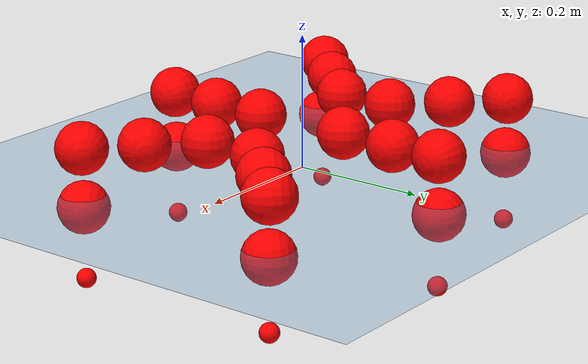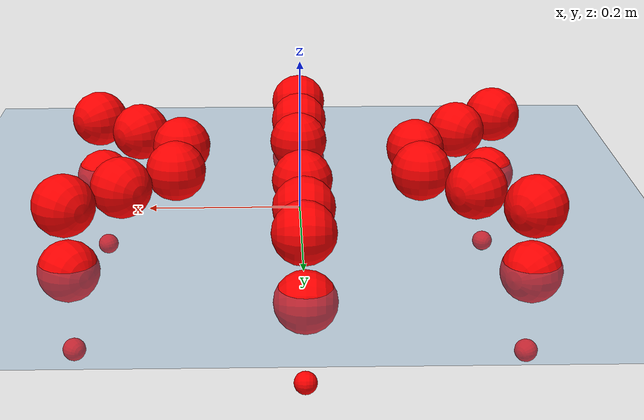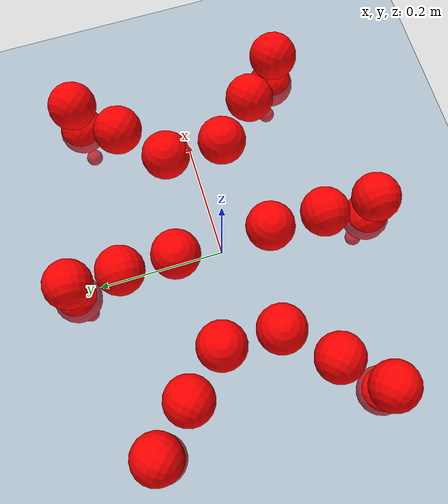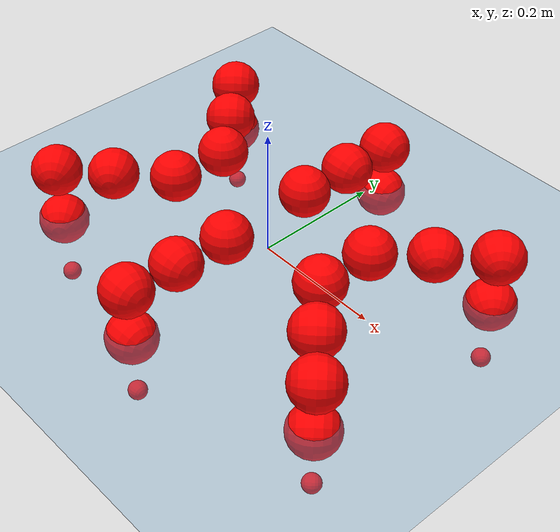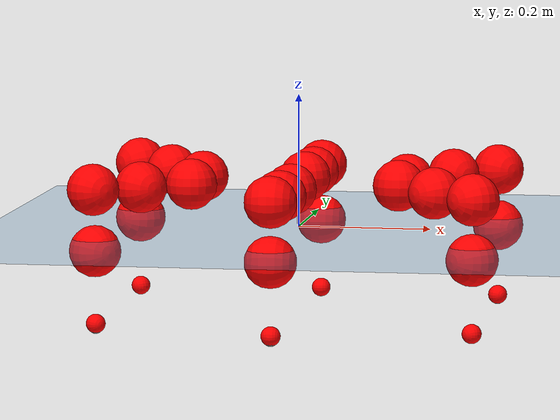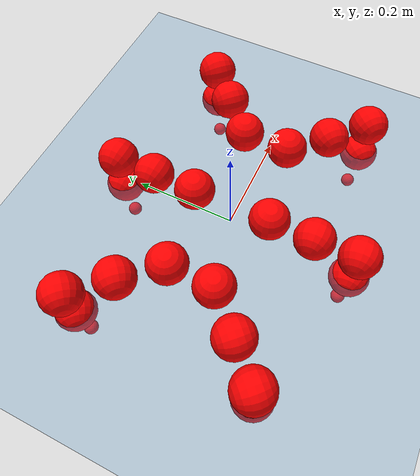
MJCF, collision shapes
<mujoco model="Golem">
  <compiler angle="radian" assetdir="assets" balanceinertia="true" inertiafromgeom="false"/>

  <option timestep="0.005" density="1.2" viscosity="2e-05"/>

  <size nkey="1"/>

  <visual>
    <quality shadowsize="8192"/>
    <map shadowclip="0.5"/>
  </visual>

  <default>
    <default class="/">
      <joint armature="0.01" damping="0.01" frictionloss="0.01"/>
      <geom contype="0" conaffinity="0" group="1" solref="-1000 -80"/>
      <site size="0.01 0.005 0.005" group="5"/>
      <general forcelimited="true" biastype="affine" gainprm="25" biasprm="0 -25 -0.5"/>
      <default class="visual">
        <geom type="mesh" group="2"/>
      </default>
      <default class="collision">
        <geom group="3"/>
      </default>
      <default class="foot">
        <geom size="0.01 0 0" condim="6" group="4" priority="1" solimp="0.015 1 0.01"/>
      </default>
      <default class="reward_collision_sphere">
        <geom group="5" rgba="1 0 0 1"/>
      </default>
    </default>
  </default>

  <asset>
    <texture type="skybox" colorspace="auto" name="//unnamed_texture_0" builtin="gradient" rgb1="0.95 0.95 0.95" rgb2="0.95 0.95 0.95" width="100" height="600"/>
    <texture type="2d" colorspace="auto" name="texplane" builtin="checker" rgb1="0.345 0.575 0.748" rgb2="0.345 0.575 0.748" markrgb="1 1 1" width="512" height="512"/>
    <material name="MatPlane" class="/" texture="texplane" texuniform="true" texrepeat="2 2" specular="0.9"/>
    <mesh name="body" class="/" file="body.stl" scale="0.001 0.001 0.001"/>
    <mesh name="coxa" class="/" file="coxa.stl" scale="0.001 0.001 0.001"/>
    <mesh name="femur" class="/" file="femur.stl" scale="0.001 0.001 0.001"/>
    <mesh name="tibia" class="/" file="tibia.stl" scale="0.001 0.001 0.001"/>
    <mesh name="tarsus" class="/" file="tarsus.stl" scale="0.001 0.001 0.001"/>
  </asset>

  <worldbody>
    <geom name="floor" class="/" size="100 100 0.125" type="plane" group="0" material="MatPlane"/>
    <light name="toplight_shadow" class="/" pos="0 0 5" dir="0.0990148 0.0990148 -0.990148" type="directional" ambient="0.04 0.04 0.04" diffuse="0.55 0.55 0.55" specular="0.12 0.12 0.12"/>
    <light name="toplight_fill" class="/" pos="0 0 5" dir="0.0990148 0.0990148 -0.990148" type="directional" castshadow="false" ambient="0.04 0.04 0.04" diffuse="0.3 0.3 0.3" specular="0.08 0.08 0.08"/>
    <body name="trunk" pos="0.000414514 -0.000178043 -0.00071796" quat="1 0.000187904 0.000202047 0.000244034">
      <inertial pos="0.00301169 0.000544047 -0.00374467" quat="0.999909 -0.0109765 -0.00459979 0.00634562" mass="3.32847" diaginertia="0.0106497 0.00308665 0.015988"/>
      <joint name="//unnamed_joint_0" type="free"/>
      <geom name="//unnamed_geom_1" class="/" pos="0 0 0.0696585" quat="1 0 0 0" type="mesh" rgba="0.9 0.9 0.9 1" mesh="body"/>
      <site name="imu" class="/" pos="0.125556 -0.0025595 0.100235" size="0.00961518"/>
      <camera name="track" class="/" pos="0 -1.58017 0" quat="0.707107 0.707107 0 0" mode="trackcom"/>
      <camera name="ego_camera" class="/" pos="0.130787 0 0.108841" quat="-0.5 -0.5 0.5 0.5"/>
      <body name="coxa_RR" pos="-0.177628 -0.0653441 0.0677116" quat="0.382569 0.000130004 8.50956e-05 -0.923927">
        <inertial pos="-0.000449187 -0.00261879 0.000434619" quat="0.999998 -0.000648589 0.00193876 -0.000288934" mass="0.173637" diaginertia="0.00994645 0.00287531 0.0151557"/>
        <joint name="coxa_joint_RR" class="/" pos="0 0 0" axis="0.000707542 0.000538798 -1" range="-3.19568 3.1419" armature="0.0096621" damping="0" frictionloss="0.00949869"/>
        <geom name="//unnamed_geom_2" class="/" type="mesh" rgba="0.2 0.2 0.2 1" mesh="coxa"/>
        <geom name="//unnamed_geom_3" class="reward_collision_sphere" size="0.0384607" pos="-0.0301817 0 0"/>
        <body name="femur_RR" pos="0.0622197 0.00198664 0.00244353" quat="0.50085 -0.499754 0.499124 0.500271">
          <inertial pos="0.000712197 0.000242245 -0.00275576" quat="0.999997 0.000752913 -0.00193888 -0.000985438" mass="0.172753" diaginertia="0.0102218 0.00298434 0.0153402"/>
          <joint name="femur_joint_RR" class="/" pos="0 0 0" axis="-0.0109466 -0.000323884 -0.99994" range="-3.13672 3.17038" armature="0.0096285" damping="0.000945058" frictionloss="0.0107468"/>
          <geom name="//unnamed_geom_4" class="/" type="mesh" rgba="0.9 0.9 0.9 1" mesh="femur"/>
          <geom name="//unnamed_geom_5" class="reward_collision_sphere" size="0.0384607"/>
          <body name="tibia_RR" pos="-0.00239888 -0.084751 -0.00037258" quat="-1.69616e-05 1 7.18436e-05 -9.40909e-05">
            <inertial pos="0.00105384 -0.00136147 -0.000975836" quat="0.999978 0.00645056 -0.00104589 -0.00150293" mass="0.177485" diaginertia="0.0106828 0.00308873 0.0154707"/>
            <joint name="tibia_joint_RR" class="/" pos="0 0 0" axis="-0.00182686 -0.0156109 0.999876" range="-3.08274 3.12367" armature="0.00984124" damping="0.0202149" frictionloss="0.00867628"/>
            <geom name="//unnamed_geom_6" class="/" type="mesh" rgba="0.2 0.2 0.2 1" mesh="tibia"/>
            <geom name="//unnamed_geom_7" class="reward_collision_sphere" size="0.0384607"/>
            <body name="tarsus_RR" pos="0.0909275 -0.00107533 -0.00298597" quat="0.999999 -0.000947422 0.000399449 -0.000861277">
              <inertial pos="0.0587087 -7.85617e-05 -0.00287405" quat="0.491276 0.502772 0.502738 0.503113" mass="0.180989" diaginertia="0.0102007 0.00313028 0.0147024"/>
              <joint name="tarsus_joint_RR" class="/" pos="0 0 0" axis="-0.00152211 0.0023006 0.999996" range="-3.19604 3.14368" armature="0.00896796" damping="0" frictionloss="0.0108744"/>
              <geom name="//unnamed_geom_8" class="/" type="mesh" rgba="0.9 0.9 0.9 1" mesh="tarsus"/>
              <geom name="foot_1" class="foot" size="0.0105718" pos="0.112678 0 0" quat="0 -0.707107 0 0.707107"/>
              <geom name="//unnamed_geom_10" class="reward_collision_sphere" size="0.0384607"/>
              <geom name="//unnamed_geom_11" class="reward_collision_sphere" size="0.0144228" pos="0.108151 0 0"/>
              <site name="foot_1" class="foot" pos="0.112678 0 0" quat="0 -0.707107 0 0.707107" size="0.00961518"/>
            </body>
          </body>
        </body>
      </body>
      <body name="coxa_RM" pos="7.36147e-05 -0.107584 0.0670416" quat="0.707116 -0.000208575 -8.30957e-05 -0.707097">
        <inertial pos="0.00297107 -9.60886e-05 -0.00208469" quat="1 4.34307e-05 0.000100457 -0.000384515" mass="0.176062" diaginertia="0.0102051 0.00318517 0.0155236"/>
        <joint name="coxa_joint_RM" class="/" pos="0 0 0" axis="0.0010621 -0.00178495 -0.999998" range="-3.16017 3.13" armature="0.0110175" damping="0.0035358" frictionloss="0.0105121"/>
        <geom name="//unnamed_geom_12" class="/" type="mesh" rgba="0.2 0.2 0.2 1" mesh="coxa"/>
        <geom name="//unnamed_geom_13" class="reward_collision_sphere" size="0.0384607" pos="-0.0301817 0 0"/>
        <body name="femur_RM" pos="0.0572018 -0.00247918 0.000832615" quat="0.500181 -0.500247 0.499763 0.499808">
          <inertial pos="0.00143383 -0.00302743 0.000227701" quat="0.999965 0.00763252 -0.00325803 -0.00039738" mass="0.17315" diaginertia="0.00980999 0.00302085 0.0146348"/>
          <joint name="femur_joint_RM" class="/" pos="0 0 0" axis="0.0129756 -0.00387971 -0.999908" stiffness="0.00842512" range="-3.14923 3.10228" armature="0.0100292" damping="0.0269961" frictionloss="0.00831159"/>
          <geom name="//unnamed_geom_14" class="/" type="mesh" rgba="0.9 0.9 0.9 1" mesh="femur"/>
          <geom name="//unnamed_geom_15" class="reward_collision_sphere" size="0.0384607"/>
          <body name="tibia_RM" pos="-0.00190499 -0.0830738 -0.000938521" quat="-0.000290542 0.999999 -0.000375648 0.00135572">
            <inertial pos="-0.00285153 0.000779503 -0.00109471" quat="0.999901 0.00842233 -0.0105893 -0.00378563" mass="0.171741" diaginertia="0.0099382 0.00298944 0.0149165"/>
            <joint name="tibia_joint_RM" class="/" pos="0 0 0" axis="0.00146066 0.00214155 0.999997" range="-3.15466 3.1959" armature="0.00899422" damping="0.0126133" frictionloss="0.0095841"/>
            <geom name="//unnamed_geom_16" class="/" type="mesh" rgba="0.2 0.2 0.2 1" mesh="tibia"/>
            <geom name="//unnamed_geom_17" class="reward_collision_sphere" size="0.0384607"/>
            <body name="tarsus_RM" pos="0.0877072 -0.000711303 0.000332083" quat="1 -7.3042e-05 0.000260814 7.58029e-05">
              <inertial pos="0.0626469 0.00174679 0.00158784" quat="0.501383 0.497133 0.499488 0.501982" mass="0.178755" diaginertia="0.010299 0.00303656 0.0153156"/>
              <joint name="tarsus_joint_RM" class="/" pos="0 0 0" axis="-0.00305141 0.00333148 0.99999" range="-3.19298 3.08919" armature="0.00948005" damping="0.00457697" frictionloss="0.00833119"/>
              <geom name="//unnamed_geom_18" class="/" type="mesh" rgba="0.9 0.9 0.9 1" mesh="tarsus"/>
              <geom name="foot_2" class="foot" size="0.0106994" pos="0.112678 0 0" quat="0 -0.707107 0 0.707107"/>
              <geom name="//unnamed_geom_20" class="reward_collision_sphere" size="0.0384607"/>
              <geom name="//unnamed_geom_21" class="reward_collision_sphere" size="0.0144228" pos="0.108151 0 0"/>
              <site name="foot_2" class="foot" pos="0.112678 0 0" quat="0 -0.707107 0 0.707107" size="0.00961518"/>
            </body>
          </body>
        </body>
      </body>
      <body name="coxa_RF" pos="0.17876 -0.0687824 0.0719451" quat="0.923961 -0.00104846 0.000366036 -0.382485">
        <inertial pos="-0.000337529 -0.00179838 0.00275426" quat="0.999957 0.000891193 -0.00847161 0.00353214" mass="0.166106" diaginertia="0.00969984 0.00296383 0.0147273"/>
        <joint name="coxa_joint_RF" class="/" pos="0 0 0" axis="-0.00382489 -0.0088545 -0.999953" range="-3.10783 3.19102" armature="0.00839927" damping="0" frictionloss="0.00982674"/>
        <geom name="//unnamed_geom_22" class="/" type="mesh" rgba="0.2 0.2 0.2 1" mesh="coxa"/>
        <geom name="//unnamed_geom_23" class="reward_collision_sphere" size="0.0384607" pos="-0.0301817 0 0"/>
        <body name="femur_RF" pos="0.0588389 -0.00279519 -0.00211945" quat="0.500029 -0.500198 0.49977 0.500002">
          <inertial pos="-0.00274625 0.00169641 -0.000846862" quat="0.999983 0.00434679 -0.00289809 -0.00261291" mass="0.176288" diaginertia="0.0101433 0.00313383 0.0152408"/>
          <joint name="femur_joint_RF" class="/" pos="0 0 0" axis="0.00372566 -0.000759676 -0.999993" stiffness="0.00645842" range="-3.119 3.08761" armature="0.00978462" damping="0.000171088" frictionloss="0.00839705"/>
          <geom name="//unnamed_geom_24" class="/" type="mesh" rgba="0.9 0.9 0.9 1" mesh="femur"/>
          <geom name="//unnamed_geom_25" class="reward_collision_sphere" size="0.0384607"/>
          <body name="tibia_RF" pos="0.0006596 -0.0882386 0.00193721" quat="-1.02591e-05 1 -1.00105e-05 -2.58379e-06">
            <inertial pos="0.000395309 0.000171949 -0.00105653" quat="0.999936 -0.00943118 0.0014015 -0.0060292" mass="0.17272" diaginertia="0.0100499 0.00295628 0.0155184"/>
            <joint name="tibia_joint_RF" class="/" pos="0 0 0" axis="0.00674989 0.00064965 0.999977" range="-3.12825 3.1923" armature="0.00960019" damping="0.00035926" frictionloss="0.0109403"/>
            <geom name="//unnamed_geom_26" class="/" type="mesh" rgba="0.2 0.2 0.2 1" mesh="tibia"/>
            <geom name="//unnamed_geom_27" class="reward_collision_sphere" size="0.0384607"/>
            <body name="tarsus_RF" pos="0.088334 -5.50559e-05 0.00105338" quat="0.999999 -0.000910714 0.000967395 -0.000133812">
              <inertial pos="0.05836 0.000263528 0.00103003" quat="0.501268 0.498207 0.501399 0.499118" mass="0.18285" diaginertia="0.0105013 0.00310672 0.0155705"/>
              <joint name="tarsus_joint_RF" class="/" pos="0 0 0" axis="-0.00715803 -0.0121816 0.9999" stiffness="0.0250008" range="-3.0882 3.14185" armature="0.00960567" damping="0.00489115" frictionloss="0.00955464"/>
              <geom name="//unnamed_geom_28" class="/" type="mesh" rgba="0.9 0.9 0.9 1" mesh="tarsus"/>
              <geom name="foot_3" class="foot" size="0.00926487" pos="0.112678 0 0" quat="0 -0.707107 0 0.707107"/>
              <geom name="//unnamed_geom_30" class="reward_collision_sphere" size="0.0384607"/>
              <geom name="//unnamed_geom_31" class="reward_collision_sphere" size="0.0144228" pos="0.108151 0 0"/>
              <site name="foot_3" class="foot" pos="0.112678 0 0" quat="0 -0.707107 0 0.707107" size="0.00961518"/>
            </body>
          </body>
        </body>
      </body>
      <body name="coxa_LR" pos="-0.176055 0.0681594 0.0689272" quat="0.382764 -7.39512e-05 -0.000479697 0.923846">
        <inertial pos="-0.00264259 -0.00285159 0.00104211" quat="0.999909 0.0061867 0.00170323 0.0118651" mass="0.17101" diaginertia="0.0100524 0.00286939 0.0145762"/>
        <joint name="coxa_joint_LR" class="/" pos="0 0 0" axis="-0.00116981 -0.000943027 -0.999999" stiffness="0.0118967" range="-3.19409 3.18796" armature="0.0106851" damping="0" frictionloss="0.00914502"/>
        <geom name="//unnamed_geom_32" class="/" type="mesh" rgba="0.2 0.2 0.2 1" mesh="coxa"/>
        <geom name="//unnamed_geom_33" class="reward_collision_sphere" size="0.0384607" pos="-0.0301817 0 0"/>
        <body name="femur_LR" pos="0.0599991 -0.00408689 0.00121255" quat="0.500584 -0.49991 0.499597 0.499909">
          <inertial pos="-0.000903114 -0.000577107 -0.000599045" quat="1 0.000324386 -0.000102517 0.000658989" mass="0.178841" diaginertia="0.0101585 0.00319949 0.0151193"/>
          <joint name="femur_joint_LR" class="/" pos="0 0 0" axis="0.00349285 4.98562e-05 0.999994" range="-3.09941 3.13133" armature="0.0100217" damping="0.013282" frictionloss="0.00955567"/>
          <geom name="//unnamed_geom_34" class="/" type="mesh" rgba="0.9 0.9 0.9 1" mesh="femur"/>
          <geom name="//unnamed_geom_35" class="reward_collision_sphere" size="0.0384607"/>
          <body name="tibia_LR" pos="-0.00188573 -0.0892679 -0.00123927" quat="0.00134229 0.999999 -0.00034398 0.00014898">
            <inertial pos="0.00283309 -0.00259507 -0.00209847" quat="0.999937 -0.0067243 0.00646417 0.00629675" mass="0.177066" diaginertia="0.0100269 0.00298494 0.0153549"/>
            <joint name="tibia_joint_LR" class="/" pos="0 0 0" axis="-0.00356189 0.0111222 -0.999932" range="-3.08539 3.17774" armature="0.0103426" damping="0" frictionloss="0.00968991"/>
            <geom name="//unnamed_geom_36" class="/" type="mesh" rgba="0.2 0.2 0.2 1" mesh="tibia"/>
            <geom name="//unnamed_geom_37" class="reward_collision_sphere" size="0.0384607"/>
            <body name="tarsus_LR" pos="0.0862092 -0.000558367 -0.000549617" quat="0.999999 0.000214158 9.91407e-05 0.00134985">
              <inertial pos="0.059139 -0.0012336 -0.00189573" quat="0.50106 0.496868 0.508143 0.493814" mass="0.177259" diaginertia="0.0106434 0.00299165 0.0149561"/>
              <joint name="tarsus_joint_LR" class="/" pos="0 0 0" axis="0.00996446 -0.000479412 -0.99995" range="-3.18573 3.08196" armature="0.00831568" damping="0" frictionloss="0.0082656"/>
              <geom name="//unnamed_geom_38" class="/" type="mesh" rgba="0.9 0.9 0.9 1" mesh="tarsus"/>
              <geom name="foot_4" class="foot" size="0.00991497" pos="0.112678 0 0" quat="0.707107 0 -0.707107 0"/>
              <geom name="//unnamed_geom_40" class="reward_collision_sphere" size="0.0384607"/>
              <geom name="//unnamed_geom_41" class="reward_collision_sphere" size="0.0144228" pos="0.108151 0 0"/>
              <site name="foot_4" class="foot" pos="0.112678 0 0" quat="0.707107 0 -0.707107 0" size="0.00961518"/>
            </body>
          </body>
        </body>
      </body>
      <body name="coxa_LM" pos="-0.00161888 0.103482 0.0677339" quat="0.70733 0.000377331 0.000124944 0.706883">
        <inertial pos="-0.00111642 -0.00278571 0.00231443" quat="0.999939 -0.00908322 0.00595795 -0.0020294" mass="0.174593" diaginertia="0.0106352 0.00313478 0.0155513"/>
        <joint name="coxa_joint_LM" class="/" pos="0 0 0" axis="-0.00383452 -0.000592195 -0.999992" range="-3.15119 3.14911" armature="0.0102642" damping="0.0117933" frictionloss="0.0109738"/>
        <geom name="//unnamed_geom_42" class="/" type="mesh" rgba="0.2 0.2 0.2 1" mesh="coxa"/>
        <geom name="//unnamed_geom_43" class="reward_collision_sphere" size="0.0384607" pos="-0.0301817 0 0"/>
        <body name="femur_LM" pos="0.0568091 -4.44932e-05 -0.00206213" quat="0.499649 -0.500127 0.499934 0.50029">
          <inertial pos="0.00278621 0.000163467 -0.00095325" quat="0.999909 0.00259937 0.00732089 0.0110706" mass="0.188974" diaginertia="0.0103916 0.00323762 0.0155215"/>
          <joint name="femur_joint_LM" class="/" pos="0 0 0" axis="-0.000298585 -0.00171167 0.999998" range="-3.11726 3.11842" armature="0.00993347" damping="0.0157901" frictionloss="0.00825971"/>
          <geom name="//unnamed_geom_44" class="/" type="mesh" rgba="0.9 0.9 0.9 1" mesh="femur"/>
          <geom name="//unnamed_geom_45" class="reward_collision_sphere" size="0.0384607"/>
          <body name="tibia_LM" pos="-0.00122763 -0.0795658 -0.00170003" quat="0.000266781 0.999999 0.000666652 0.000916391">
            <inertial pos="0.00289508 -0.000921601 -0.00233406" quat="0.999948 0.000474005 0.000466973 -0.0101372" mass="0.181078" diaginertia="0.0104766 0.00314196 0.0151829"/>
            <joint name="tibia_joint_LM" class="/" pos="0 0 0" axis="-0.0103532 -0.0108 -0.999888" range="-3.14791 3.13672" armature="0.00934932" damping="0.00583029" frictionloss="0.00838653"/>
            <geom name="//unnamed_geom_46" class="/" type="mesh" rgba="0.2 0.2 0.2 1" mesh="tibia"/>
            <geom name="//unnamed_geom_47" class="reward_collision_sphere" size="0.0384607"/>
            <body name="tarsus_LM" pos="0.087156 0.00138974 -0.00162683" quat="0.999999 0.000219725 -0.000795241 0.000614306">
              <inertial pos="0.0603101 0.000296826 0.00275689" quat="0.503195 0.501242 0.491584 0.503881" mass="0.184892" diaginertia="0.010543 0.00303868 0.0154661"/>
              <joint name="tarsus_joint_LM" class="/" pos="0 0 0" axis="-0.000473117 -0.00456657 -0.999989" stiffness="0.00501837" range="-3.15857 3.15838" armature="0.0100457" damping="0" frictionloss="0.0106077"/>
              <geom name="//unnamed_geom_48" class="/" type="mesh" rgba="0.9 0.9 0.9 1" mesh="tarsus"/>
              <geom name="foot_5" class="foot" size="0.00995556" pos="0.112678 0 0" quat="0.707107 0 -0.707107 0"/>
              <geom name="//unnamed_geom_50" class="reward_collision_sphere" size="0.0384607"/>
              <geom name="//unnamed_geom_51" class="reward_collision_sphere" size="0.0144228" pos="0.108151 0 0"/>
              <site name="foot_5" class="foot" pos="0.112678 0 0" quat="0.707107 0 -0.707107 0" size="0.00961518"/>
            </body>
          </body>
        </body>
      </body>
      <body name="coxa_LF" pos="0.180688 0.0655437 0.0703564" quat="0.923909 -7.58707e-05 1.39893e-05 0.382613">
        <inertial pos="0.00109659 0.000114858 0.00238757" quat="0.999907 0.00740455 -0.0108937 -0.00361906" mass="0.173289" diaginertia="0.0101564 0.00318504 0.0148877"/>
        <joint name="coxa_joint_LF" class="/" pos="0 0 0" axis="-0.0112362 -0.00908675 -0.999896" range="-3.13154 3.13245" armature="0.00829464" damping="0.000158442" frictionloss="0.00995177"/>
        <geom name="//unnamed_geom_52" class="/" type="mesh" rgba="0.2 0.2 0.2 1" mesh="coxa"/>
        <geom name="//unnamed_geom_53" class="reward_collision_sphere" size="0.0384607" pos="-0.0301817 0 0"/>
        <body name="femur_LF" pos="0.0584149 -0.000843828 0.00176387" quat="0.500033 -0.500069 0.500035 0.499863">
          <inertial pos="-0.000952007 -0.000437346 0.000607311" quat="0.999986 -0.00509867 -0.000466376 -0.00114771" mass="0.170377" diaginertia="0.0104393 0.0030136 0.0152102"/>
          <joint name="femur_joint_LF" class="/" pos="0 0 0" axis="0.000354302 -0.00215658 0.999998" range="-3.15578 3.15804" armature="0.0109756" damping="0.0150111" frictionloss="0.00990581"/>
          <geom name="//unnamed_geom_54" class="/" type="mesh" rgba="0.9 0.9 0.9 1" mesh="femur"/>
          <geom name="//unnamed_geom_55" class="reward_collision_sphere" size="0.0384607"/>
          <body name="tibia_LF" pos="-0.000850404 -0.0863072 -0.00189251" quat="0.00131971 0.999999 -0.000281804 -0.000290702">
            <inertial pos="-0.00217829 -0.000723826 0.00148156" quat="0.999999 -0.000791017 -0.000611125 4.80811e-05" mass="0.181103" diaginertia="0.0100757 0.00304051 0.015473"/>
            <joint name="tibia_joint_LF" class="/" pos="0 0 0" axis="-0.00292554 -0.00380615 -0.999988" range="-3.13819 3.12244" armature="0.0111107" damping="0" frictionloss="0.00944536"/>
            <geom name="//unnamed_geom_56" class="/" type="mesh" rgba="0.2 0.2 0.2 1" mesh="tibia"/>
            <geom name="//unnamed_geom_57" class="reward_collision_sphere" size="0.0384607"/>
            <body name="tarsus_LF" pos="0.086191 -0.00128717 0.00104205" quat="1 -8.60621e-05 -8.18028e-05 7.53683e-05">
              <inertial pos="0.0605263 0.00320166 0.000370791" quat="0.50852 0.494752 0.491353 0.505173" mass="0.169848" diaginertia="0.0104404 0.0029454 0.0155311"/>
              <joint name="tarsus_joint_LF" class="/" pos="0 0 0" axis="0.00843284 -0.00961935 -0.999918" range="-3.13545 3.13843" armature="0.0110056" damping="0.00710906" frictionloss="0.009056"/>
              <geom name="//unnamed_geom_58" class="/" type="mesh" rgba="0.9 0.9 0.9 1" mesh="tarsus"/>
              <geom name="foot_6" class="foot" size="0.0102663" pos="0.112678 0 0" quat="0.707107 0 -0.707107 0"/>
              <geom name="//unnamed_geom_60" class="reward_collision_sphere" size="0.0384607"/>
              <geom name="//unnamed_geom_61" class="reward_collision_sphere" size="0.0144228" pos="0.108151 0 0"/>
              <site name="foot_6" class="foot" pos="0.112678 0 0" quat="0.707107 0 -0.707107 0" size="0.00961518"/>
            </body>
          </body>
        </body>
      </body>
    </body>
  </worldbody>

  <contact>
    <pair class="/" geom1="floor" geom2="foot_1" name="//unnamed_contact_0"/>
    <pair class="/" geom1="floor" geom2="foot_2" name="//unnamed_contact_1"/>
    <pair class="/" geom1="floor" geom2="foot_3" name="//unnamed_contact_2"/>
    <pair class="/" geom1="floor" geom2="foot_4" name="//unnamed_contact_3"/>
    <pair class="/" geom1="floor" geom2="foot_5" name="//unnamed_contact_4"/>
    <pair class="/" geom1="floor" geom2="foot_6" name="//unnamed_contact_5"/>
  </contact>

  <actuator>
    <general name="coxa_joint_RR" class="/" joint="coxa_joint_RR" forcerange="-6.55496 6.55496" gainprm="24.6169" biasprm="0 -24.6169 -0.474256"/>
    <general name="femur_joint_RR" class="/" joint="femur_joint_RR" forcerange="-7.28564 7.28564" gainprm="24.6169" biasprm="0 -24.6169 -0.474256"/>
    <general name="tibia_joint_RR" class="/" joint="tibia_joint_RR" forcerange="-6.7148 6.7148" gainprm="24.6169" biasprm="0 -24.6169 -0.474256"/>
    <general name="tarsus_joint_RR" class="/" joint="tarsus_joint_RR" forcerange="-7.59437 7.59437" gainprm="24.6169" biasprm="0 -24.6169 -0.474256"/>
    <general name="coxa_joint_RM" class="/" joint="coxa_joint_RM" forcerange="-6.76453 6.76453" gainprm="24.6169" biasprm="0 -24.6169 -0.474256"/>
    <general name="femur_joint_RM" class="/" joint="femur_joint_RM" forcerange="-7.01389 7.01389" gainprm="24.6169" biasprm="0 -24.6169 -0.474256"/>
    <general name="tibia_joint_RM" class="/" joint="tibia_joint_RM" forcerange="-7.1508 7.1508" gainprm="24.6169" biasprm="0 -24.6169 -0.474256"/>
    <general name="tarsus_joint_RM" class="/" joint="tarsus_joint_RM" forcerange="-7.38928 7.38928" gainprm="24.6169" biasprm="0 -24.6169 -0.474256"/>
    <general name="coxa_joint_RF" class="/" joint="coxa_joint_RF" forcerange="-7.73205 7.73205" gainprm="24.6169" biasprm="0 -24.6169 -0.474256"/>
    <general name="femur_joint_RF" class="/" joint="femur_joint_RF" forcerange="-6.57276 6.57276" gainprm="24.6169" biasprm="0 -24.6169 -0.474256"/>
    <general name="tibia_joint_RF" class="/" joint="tibia_joint_RF" forcerange="-7.76744 7.76744" gainprm="24.6169" biasprm="0 -24.6169 -0.474256"/>
    <general name="tarsus_joint_RF" class="/" joint="tarsus_joint_RF" forcerange="-6.27833 6.27833" gainprm="24.6169" biasprm="0 -24.6169 -0.474256"/>
    <general name="coxa_joint_LR" class="/" joint="coxa_joint_LR" forcerange="-6.28122 6.28122" gainprm="24.6169" biasprm="0 -24.6169 -0.474256"/>
    <general name="femur_joint_LR" class="/" joint="femur_joint_LR" forcerange="-6.84148 6.84148" gainprm="24.6169" biasprm="0 -24.6169 -0.474256"/>
    <general name="tibia_joint_LR" class="/" joint="tibia_joint_LR" forcerange="-6.98301 6.98301" gainprm="24.6169" biasprm="0 -24.6169 -0.474256"/>
    <general name="tarsus_joint_LR" class="/" joint="tarsus_joint_LR" forcerange="-6.28035 6.28035" gainprm="24.6169" biasprm="0 -24.6169 -0.474256"/>
    <general name="coxa_joint_LM" class="/" joint="coxa_joint_LM" forcerange="-7.07763 7.07763" gainprm="24.6169" biasprm="0 -24.6169 -0.474256"/>
    <general name="femur_joint_LM" class="/" joint="femur_joint_LM" forcerange="-6.27205 6.27205" gainprm="24.6169" biasprm="0 -24.6169 -0.474256"/>
    <general name="tibia_joint_LM" class="/" joint="tibia_joint_LM" forcerange="-6.50048 6.50048" gainprm="24.6169" biasprm="0 -24.6169 -0.474256"/>
    <general name="tarsus_joint_LM" class="/" joint="tarsus_joint_LM" forcerange="-6.99188 6.99188" gainprm="24.6169" biasprm="0 -24.6169 -0.474256"/>
    <general name="coxa_joint_LF" class="/" joint="coxa_joint_LF" forcerange="-6.42807 6.42807" gainprm="24.6169" biasprm="0 -24.6169 -0.474256"/>
    <general name="femur_joint_LF" class="/" joint="femur_joint_LF" forcerange="-6.27912 6.27912" gainprm="24.6169" biasprm="0 -24.6169 -0.474256"/>
    <general name="tibia_joint_LF" class="/" joint="tibia_joint_LF" forcerange="-7.75643 7.75643" gainprm="24.6169" biasprm="0 -24.6169 -0.474256"/>
    <general name="tarsus_joint_LF" class="/" joint="tarsus_joint_LF" forcerange="-6.55367 6.55367" gainprm="24.6169" biasprm="0 -24.6169 -0.474256"/>
  </actuator>

  <sensor>
    <gyro site="imu" name="imu_angular_velocity"/>
    <velocimeter site="imu" name="imu_linear_velocity"/>
    <framelinvel objtype="site" objname="foot_1" name="foot_1_global_linear_velocity"/>
    <framelinvel objtype="site" objname="foot_2" name="foot_2_global_linear_velocity"/>
    <framelinvel objtype="site" objname="foot_3" name="foot_3_global_linear_velocity"/>
    <framelinvel objtype="site" objname="foot_4" name="foot_4_global_linear_velocity"/>
    <framelinvel objtype="site" objname="foot_5" name="foot_5_global_linear_velocity"/>
    <framelinvel objtype="site" objname="foot_6" name="foot_6_global_linear_velocity"/>
  </sensor>

  <keyframe>
    <key name="home" qpos="0 0 0.1457 1 0 0 0 0 0 0 0 0 0 0 0 0 0 0 0 0 0 0 0 0 0 0 0 0 0 0 0"/>
  </keyframe>
</mujoco>
